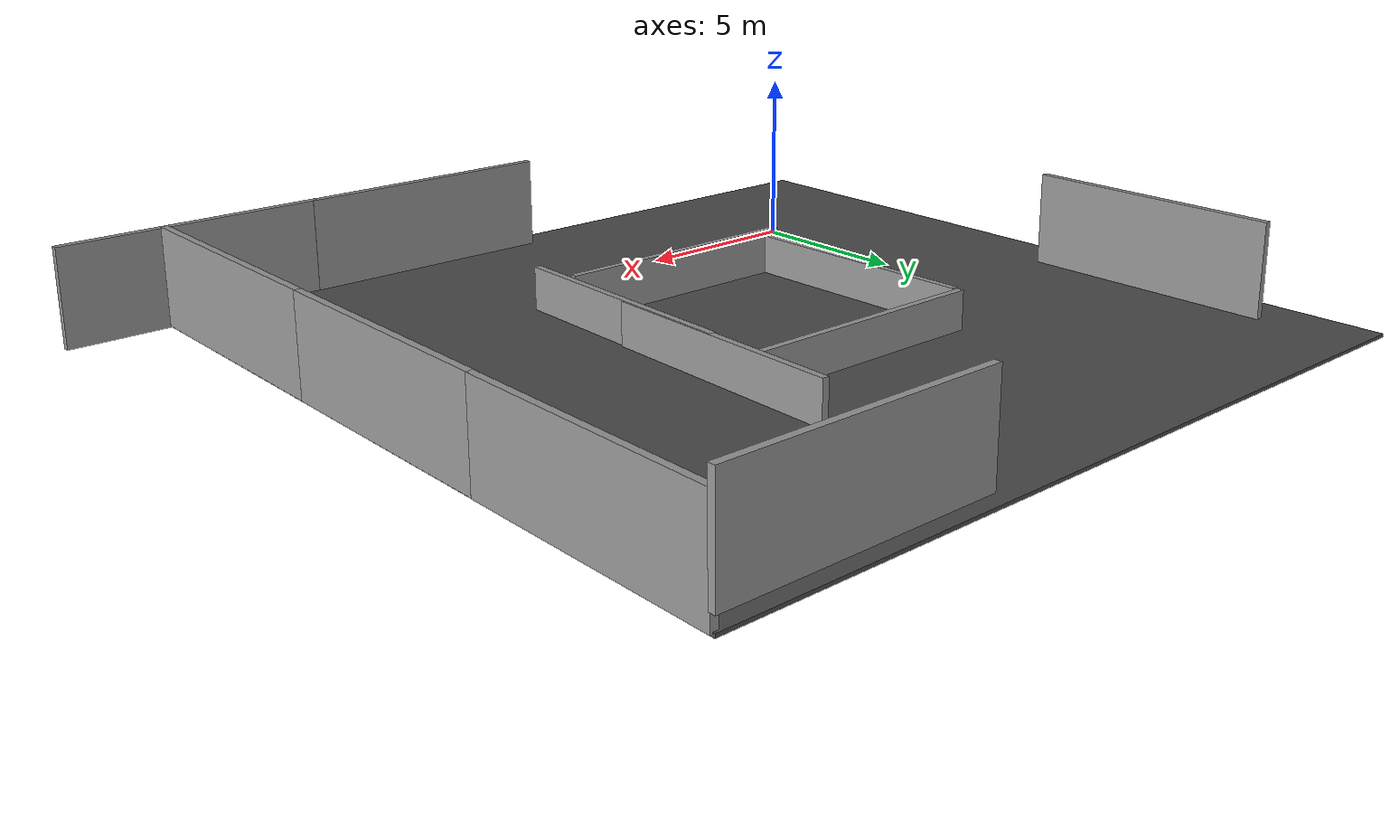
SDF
<sdf version="1.6">
 <world name="default">
  <gravity>0 0 -9.8</gravity>
  <magnetic_field>6e-06 2.3e-05 -4.2e-05</magnetic_field>
  <atmosphere type="adiabatic"/>
  <physics name="default_physics" default="0" type="ode">
   <max_step_size>0.001</max_step_size>
   <real_time_factor>1</real_time_factor>
   <real_time_update_rate>1000</real_time_update_rate>
  </physics>
  <scene><ambient>0.4 0.4 0.4 1</ambient><background>0.7 0.7 0.7 1</background><shadows>1</shadows></scene>
  <spherical_coordinates>
   <surface_model>EARTH_WGS84</surface_model>
   <latitude_deg>0</latitude_deg>
   <longitude_deg>0</longitude_deg>
   <elevation>0</elevation>
   <heading_deg>0</heading_deg>
  </spherical_coordinates>
  <model name="asphalt_plane">
   <static>1</static>
   <link name="link">
    <collision name="collision"><geometry><box><size>23.7904 23.288 0.1</size></box></geometry></collision>
    <visual name="visual">
     <cast_shadows>0</cast_shadows>
     <geometry><box><size>23.7904 23.288 0.1</size></box></geometry>
     <material>
      <script>
       <uri>model://asphalt_plane/materials/scripts</uri>
       <uri>model://asphalt_plane/materials/textures</uri>
       <name>vrc/asphalt</name>
      </script>
     </material>
    </visual>
   </link>
   <pose>6.82155 6.73019 0 0 -0 0</pose>
  </model>
  <model name="grey_wall">
   <static>1</static>
   <link name="link">
    <pose>0 0 1.4 0 -0 0</pose>
    <collision name="collision"><geometry><box><size>7.5 0.2 2.8</size></box></geometry></collision>
    <visual name="visual">
     <cast_shadows>0</cast_shadows>
     <geometry><box><size>7.5 0.2 2.8</size></box></geometry>
     <material>
      <script>
       <uri>model://grey_wall/materials/scripts</uri>
       <uri>model://grey_wall/materials/textures</uri>
       <name>vrc/grey_wall</name>
      </script>
     </material>
    </visual>
   </link>
   <pose>6.83237 10.5455 -1.62587 0 -0 0</pose>
  </model>
  <model name="grey_wall_clone">
   <static>1</static>
   <link name="link">
    <pose>0 0 1.4 0 -0 0</pose>
    <collision name="collision"><geometry><box><size>7.5 0.2 2.8</size></box></geometry></collision>
    <visual name="visual">
     <cast_shadows>0</cast_shadows>
     <geometry><box><size>7.5 0.2 2.8</size></box></geometry>
     <material>
      <script>
       <uri>model://grey_wall/materials/scripts</uri>
       <uri>model://grey_wall/materials/textures</uri>
       <name>vrc/grey_wall</name>
      </script>
     </material>
    </visual>
   </link>
   <pose>3.21202 6.63046 -1.61577 0 -0 1.59621</pose>
  </model>
  <model name="grey_wall_clone_0">
   <static>1</static>
   <link name="link">
    <pose>0 0 1.4 0 -0 0</pose>
    <collision name="collision"><geometry><box><size>7.5 0.2 2.8</size></box></geometry></collision>
    <visual name="visual">
     <cast_shadows>0</cast_shadows>
     <geometry><box><size>7.5 0.2 2.8</size></box></geometry>
     <material>
      <script>
       <uri>model://grey_wall/materials/scripts</uri>
       <uri>model://grey_wall/materials/textures</uri>
       <name>vrc/grey_wall</name>
      </script>
     </material>
    </visual>
   </link>
   <pose>6.6817 3.12142 -1.43482 0 -0 0</pose>
  </model>
  <model name="grey_wall_clone_clone">
   <static>1</static>
   <link name="link">
    <pose>0 0 1.4 0 -0 0</pose>
    <collision name="collision"><geometry><box><size>7.5 0.2 2.8</size></box></geometry></collision>
    <visual name="visual">
     <cast_shadows>0</cast_shadows>
     <geometry><box><size>7.5 0.2 2.8</size></box></geometry>
     <material>
      <script>
       <uri>model://grey_wall/materials/scripts</uri>
       <uri>model://grey_wall/materials/textures</uri>
       <name>vrc/grey_wall</name>
      </script>
     </material>
    </visual>
   </link>
   <pose>10.6715 9.33109 -1.50615 0 -0 1.55688</pose>
  </model>
  <model name="grey_wall_0">
   <static>1</static>
   <link name="link">
    <pose>0 0 1.4 0 -0 0</pose>
    <collision name="collision"><geometry><box><size>7.5 0.2 2.8</size></box></geometry></collision>
    <visual name="visual">
     <cast_shadows>0</cast_shadows>
     <geometry><box><size>7.5 0.2 2.8</size></box></geometry>
     <material>
      <script>
       <uri>model://grey_wall/materials/scripts</uri>
       <uri>model://grey_wall/materials/textures</uri>
       <name>vrc/grey_wall</name>
      </script>
     </material>
    </visual>
   </link>
   <pose>-3.72663 11.7299 0 0 0 -1.5698</pose>
  </model>
  <model name="grey_wall_0_clone">
   <static>1</static>
   <link name="link">
    <pose>0 0 1.4 0 -0 0</pose>
    <collision name="collision"><geometry><box><size>7.5 0.2 2.8</size></box></geometry></collision>
    <visual name="visual">
     <cast_shadows>0</cast_shadows>
     <geometry><box><size>7.5 0.2 2.8</size></box></geometry>
     <material>
      <script>
       <uri>model://grey_wall/materials/scripts</uri>
       <uri>model://grey_wall/materials/textures</uri>
       <name>vrc/grey_wall</name>
      </script>
     </material>
    </visual>
   </link>
   <pose>18.6774 14.557 0 0 0 -1.5698</pose>
  </model>
  <model name="grey_wall_0_clone_clone">
   <static>1</static>
   <link name="link">
    <pose>0 0 1.4 0 -0 0</pose>
    <collision name="collision"><geometry><box><size>7.5 0.2 2.8</size></box></geometry></collision>
    <visual name="visual">
     <cast_shadows>0</cast_shadows>
     <geometry><box><size>7.5 0.2 2.8</size></box></geometry>
     <material>
      <script>
       <uri>model://grey_wall/materials/scripts</uri>
       <uri>model://grey_wall/materials/textures</uri>
       <name>vrc/grey_wall</name>
      </script>
     </material>
    </visual>
   </link>
   <pose>18.6719 7.22112 0 0 0 -1.5698</pose>
  </model>
  <model name="grey_wall_0_clone_clone_clone">
   <static>1</static>
   <link name="link">
    <pose>0 0 1.4 0 -0 0</pose>
    <collision name="collision"><geometry><box><size>7.5 0.2 2.8</size></box></geometry></collision>
    <visual name="visual">
     <cast_shadows>0</cast_shadows>
     <geometry><box><size>7.5 0.2 2.8</size></box></geometry>
     <material>
      <script>
       <uri>model://grey_wall/materials/scripts</uri>
       <uri>model://grey_wall/materials/textures</uri>
       <name>vrc/grey_wall</name>
      </script>
     </material>
    </visual>
   </link>
   <pose>18.6701 -0.251622 0 0 0 -1.5698</pose>
  </model>
  <model name="grey_wall_clone_0_clone">
   <static>1</static>
   <link name="link">
    <pose>0 0 1.4 0 -0 0</pose>
    <collision name="collision"><geometry><box><size>7.5 0.2 2.8</size></box></geometry></collision>
    <visual name="visual">
     <cast_shadows>0</cast_shadows>
     <geometry><box><size>7.5 0.2 2.8</size></box></geometry>
     <material>
      <script>
       <uri>model://grey_wall/materials/scripts</uri>
       <uri>model://grey_wall/materials/textures</uri>
       <name>vrc/grey_wall</name>
      </script>
     </material>
    </visual>
   </link>
   <pose>17.7868 -4.21137 -0.07668 0 -0 0</pose>
  </model>
  <model name="grey_wall_clone_0_clone_0">
   <static>1</static>
   <link name="link">
    <pose>0 0 1.4 0 -0 0</pose>
    <collision name="collision"><geometry><box><size>7.5 0.2 2.8</size></box></geometry></collision>
    <visual name="visual">
     <cast_shadows>0</cast_shadows>
     <geometry><box><size>7.5 0.2 2.8</size></box></geometry>
     <material>
      <script>
       <uri>model://grey_wall/materials/scripts</uri>
       <uri>model://grey_wall/materials/textures</uri>
       <name>vrc/grey_wall</name>
      </script>
     </material>
    </visual>
   </link>
   <pose>15.0987 18.4359 0.50816 0 -0 0</pose>
  </model>
  <model name="grey_wall_clone_0_clone_clone">
   <static>1</static>
   <link name="link">
    <pose>0 0 1.4 0 -0 0</pose>
    <collision name="collision"><geometry><box><size>7.5 0.2 2.8</size></box></geometry></collision>
    <visual name="visual">
     <cast_shadows>0</cast_shadows>
     <geometry><box><size>7.5 0.2 2.8</size></box></geometry>
     <material>
      <script>
       <uri>model://grey_wall/materials/scripts</uri>
       <uri>model://grey_wall/materials/textures</uri>
       <name>vrc/grey_wall</name>
      </script>
     </material>
    </visual>
   </link>
   <pose>10.4958 -4.20064 -0.07668 0 -0 0</pose>
  </model>
  <model name="grey_wall_clone_clone_clone">
   <static>1</static>
   <link name="link">
    <pose>0 0 1.4 0 -0 0</pose>
    <collision name="collision"><geometry><box><size>7.5 0.2 2.8</size></box></geometry></collision>
    <visual name="visual">
     <cast_shadows>0</cast_shadows>
     <geometry><box><size>7.5 0.2 2.8</size></box></geometry>
     <material>
      <script>
       <uri>model://grey_wall/materials/scripts</uri>
       <uri>model://grey_wall/materials/textures</uri>
       <name>vrc/grey_wall</name>
      </script>
     </material>
    </visual>
   </link>
   <pose>10.5626 5.31652 -1.50615 0 -0 1.55688</pose>
  </model>
 </world>
</sdf>
